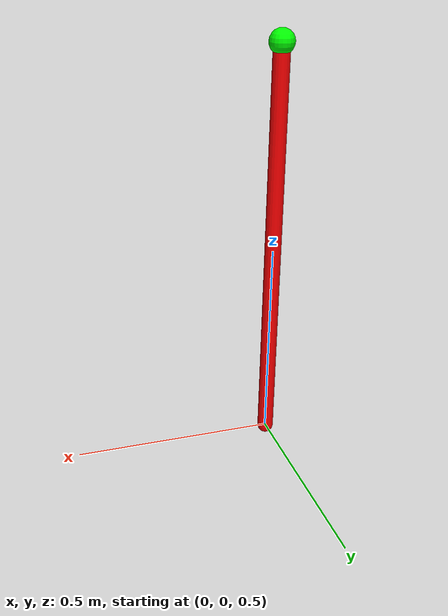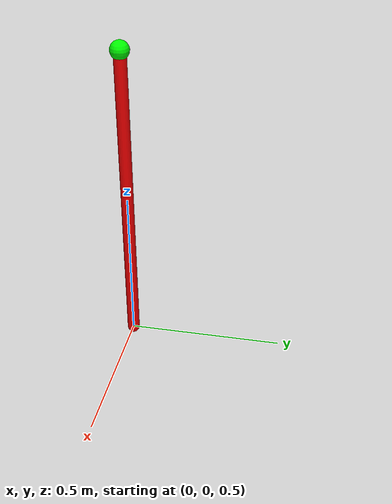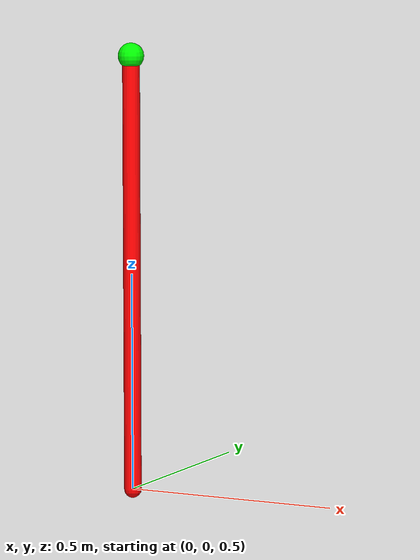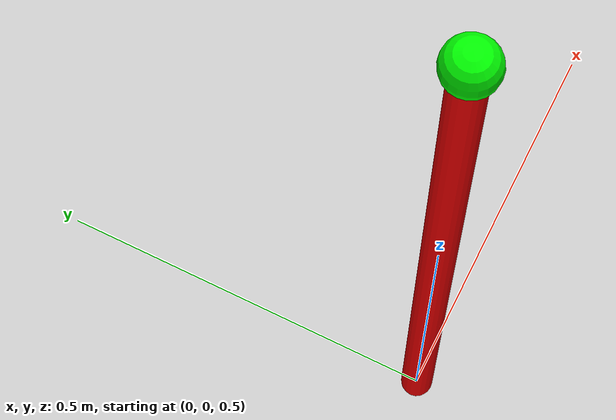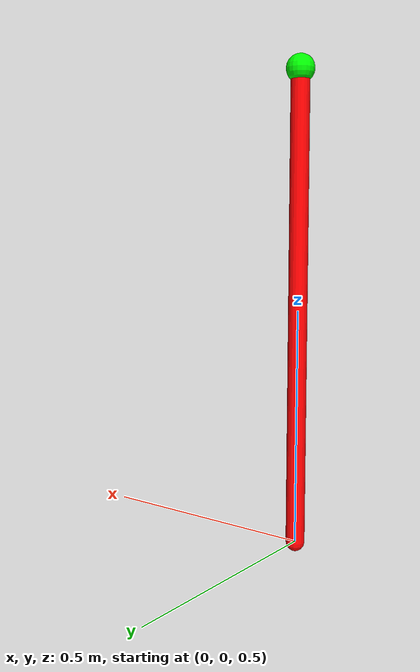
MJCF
<mujoco model="pendulum">
  <!-- added manually -->
  <option timestep="0.02" iterations="5" ls_iterations="10"/>

  <!-- generated by parsing utils -->
  <worldbody>
    <camera name="camera" pos="0.0 3.0 1.5" xyaxes="-1.0 0.0 0.0 0.0 0.0 1.0" mode="fixed"/>
    <body name="base" pos="0 0 1.5">
      <inertial pos="0 0 0" mass="2" diaginertia="0.00072 0.00072 0.00072"/>
      <geom name="base_visual" size="0.03" pos="0 0 0" type="sphere"
            contype="0" conaffinity="0" group="1" density="0" rgba="0 1 0 1"/>
      <body name="pendulum_link" pos="0 0 0">
        <inertial pos="0 0 -0.5" mass="1" diaginertia="0.087959 0.087959 0.00019896"/>
        <joint name="pendulum_joint" pos="0 0 0" axis="0 1 0" />
        <geom name="pendulum_link_visual" size="0.02 0.5" pos="0 0 -0.5"
              type="capsule" contype="0" conaffinity="0" group="1" density="0"
              rgba="1 0 0 1"/>
      </body>
    </body>
  </worldbody>
  <actuator>
    <motor gear="2" name="pendulum_joint_actuator" ctrllimited="true" ctrlrange="-1.0 1.0" joint="pendulum_joint"/>
  </actuator>
  <equality/>
</mujoco>
